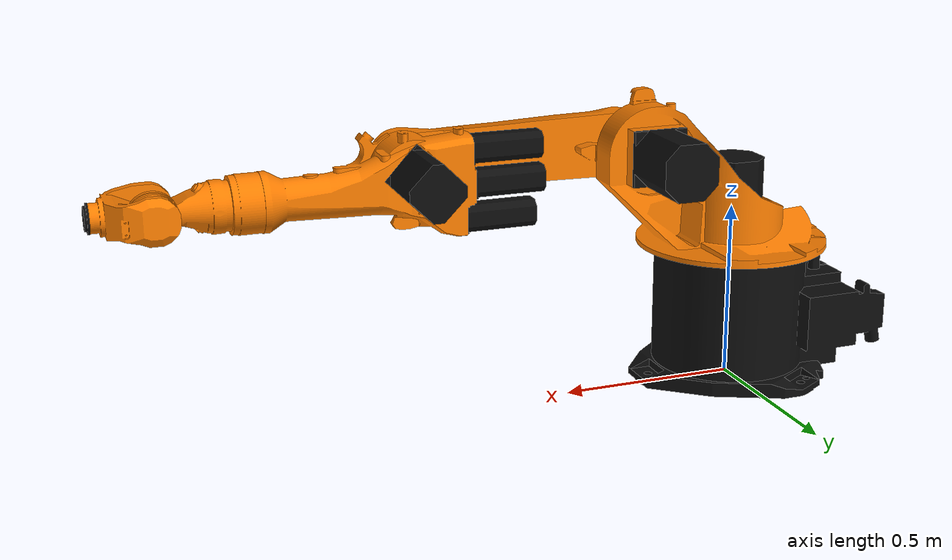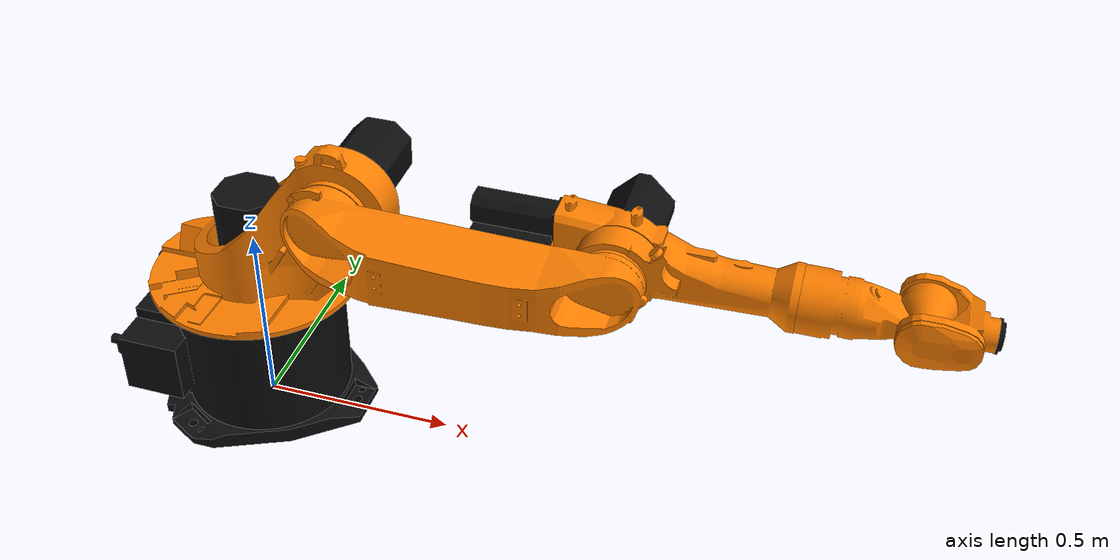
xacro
<?xml version="1.0"?>

<robot name="kuka_kr16" xmlns:xacro="http://www.ros.org/wiki/xacro">

  <xacro:include filename="$(find kuka_kr16_support)/urdf/kr16_macro.xacro" />
  <xacro:include filename="$(find kuka_resources)/urdf/kuka_pedestal_macro.xacro" />

  <xacro:property name="kr16_prefix" value=""/>

  <xacro:kuka_kr16 prefix="${kr16_prefix}"/>

</robot>

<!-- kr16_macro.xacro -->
<robot xmlns:xacro="http://www.ros.org/wiki/xacro">

    <xacro:include filename="$(find kuka_resources)/urdf/common_materials.xacro"/>

    <xacro:property name="DEG2RAD" value="0.017453292519943295"/>
    <xacro:property name="PI" value="3.141592653589793"/>

    <xacro:macro name="kuka_kr16" params="prefix">

        <!-- LINKS -->
            <!-- base link -->
            <link name="${prefix}base_link">
                <visual>
                    <origin xyz="0 0 0" rpy="0 0 0"/>
                    <geometry>
                        <mesh filename="package://kuka_kr16_support/meshes/kr16/visual/base_link.stl" scale="0.001 0.001 0.001" />
                    </geometry>
                    <xacro:material_kuka_black/>
                </visual>
                <collision>
                    <origin xyz="0 0 0" rpy="0 0 0"/>
                    <geometry>
                        <mesh filename="package://kuka_kr16_support/meshes/kr16/collision/base_link.stl" scale="0.001 0.001 0.001" />
                    </geometry>
                </collision>
            </link>
            <!-- link 1 (A1) -->
            <link name="${prefix}link_1">
                <!-- main link body -->
                <visual>
                    <origin xyz="0 0 -0.397" rpy="0 0 0"/>
                    <geometry>
                        <mesh filename="package://kuka_kr16_support/meshes/kr16/visual/link_1.stl" scale="0.001 0.001 0.001" />
                    </geometry>
                    <xacro:material_kuka_orange/>
                </visual>
                <collision>
                    <origin xyz="0 0 -0.397" rpy="0 0 0"/>
                    <geometry>
                        <mesh filename="package://kuka_kr16_support/meshes/kr16/collision/link_1.stl" scale="0.001 0.001 0.001" />
                    </geometry>
                </collision>
            </link>
            <!-- link 2 -->
            <link name="${prefix}link_2">
                <visual>
                    <origin xyz="-0.26 0 -0.675" rpy="0 0 0"/>
                    <geometry>
                        <mesh filename="package://kuka_kr16_support/meshes/kr16/visual/link_2.stl" scale="0.001 0.001 0.001" />
                    </geometry>
                    <xacro:material_kuka_orange/>
                </visual>
                <collision>
                    <origin xyz="-0.26 0 -0.675" rpy="0 0 0"/>
                    <geometry>
                        <mesh filename="package://kuka_kr16_support/meshes/kr16/collision/link_2.stl" scale="0.001 0.001 0.001" />
                    </geometry>
                </collision>
            </link>
            <!-- link 3 -->
            <link name="${prefix}link_3">
                <visual>
                    <origin xyz="-0.26 0 -1.355" rpy="0 0 0"/>
                    <geometry>
                        <mesh filename="package://kuka_kr16_support/meshes/kr16/visual/link_3.stl" scale="0.001 0.001 0.001" />
                    </geometry>
                    <xacro:material_kuka_orange/>
                </visual>
                <collision>
                    <origin xyz="-0.26 0 -1.355" rpy="0 0 0"/>
                    <geometry>
                        <mesh filename="package://kuka_kr16_support/meshes/kr16/collision/link_3.stl" scale="0.001 0.001 0.001" />
                    </geometry>
                </collision>
            </link>
            <!-- link 4 -->
            <link name="${prefix}link_4">
                <visual>
                    <origin xyz="-0.662 0 -1.32" rpy="0 0 0"/>
                    <geometry>
                        <mesh filename="package://kuka_kr16_support/meshes/kr16/visual/link_4.stl" scale="0.001 0.001 0.001" />
                    </geometry>
                    <xacro:material_kuka_orange/>
                </visual>
                <collision>
                    <origin xyz="-0.662 0 -1.32" rpy="0 0 0"/>
                    <geometry>
                        <mesh filename="package://kuka_kr16_support/meshes/kr16/collision/link_4.stl" scale="0.001 0.001 0.001" />
                    </geometry>
                </collision>
            </link>
            <!-- link 5 -->
            <link name="${prefix}link_5">
                <visual>
                    <origin xyz="-0.930 0 -1.320" rpy="0 0 0"/>
                    <geometry>
                        <mesh filename="package://kuka_kr16_support/meshes/kr16/visual/link_5.stl" scale="0.001 0.001 0.001" />
                    </geometry>
                    <xacro:material_kuka_orange/>
                </visual>
                <collision>
                    <origin xyz="-0.930 0 -1.320" rpy="0 0 0"/>
                    <geometry>
                        <mesh filename="package://kuka_kr16_support/meshes/kr16/collision/link_5.stl" scale="0.001 0.001 0.001" />
                    </geometry>
                </collision>
            </link>
            <!-- link 6 -->
            <link name="${prefix}link_6">
                <visual>
                    <origin xyz="-1.088 0 -1.320" rpy="0 0 0"/>
                    <geometry>
                        <mesh filename="package://kuka_kr16_support/meshes/kr16/visual/link_6.stl" scale="0.001 0.001 0.001" />
                    </geometry>
                    <xacro:material_kuka_black/>
                </visual>
                <collision>
                    <origin xyz="-1.088 0 -1.320" rpy="0 0 0"/>
                    <geometry>
                        <mesh filename="package://kuka_kr16_support/meshes/kr16/collision/link_6.stl" scale="0.001 0.001 0.001" />
                    </geometry>
                </collision>
            </link>
            <!-- tool 0 -->
            <link name="${prefix}tool0"/>
        <!-- END LINKS -->

        <!-- JOINTS -->
            <!-- joint 1 (A1) -->
            <joint name="${prefix}joint_1" type="revolute">
                <origin xyz="0 0 0.397" rpy="0 0 0"/>
                <parent link="${prefix}base_link"/>
                <child link="${prefix}link_1"/>
                <axis xyz="0 0 -1"/>
                <limit effort="0" lower="${-DEG2RAD * 185}" upper="${DEG2RAD * 185}" velocity="${DEG2RAD * 156}"/>
            </joint>
            <!-- joint 2 (A2) -->
            <joint name="${prefix}joint_2" type="revolute">
                <origin xyz="0.26 0 ${0.675-0.397}" rpy="0 ${PI/2} 0"/>
                <parent link="${prefix}link_1"/>
                <child link="${prefix}link_2"/>
                <axis xyz="0 1 0"/>
                <limit effort="0" lower="${-DEG2RAD * 155}" upper="${DEG2RAD * 35}" velocity="${DEG2RAD * 156}"/>
            </joint>
            <!-- joint 3 (A3) -->
            <joint name="${prefix}joint_3" type="revolute">
                <origin xyz="0 0 0.68" rpy="0 ${-PI/2} 0"/>
                <parent link="${prefix}link_2"/>
                <child link="${prefix}link_3"/>
                <axis xyz="0 1 0"/>
                <limit effort="0" lower="${-DEG2RAD * 130}" upper="${DEG2RAD * 154}" velocity="${DEG2RAD * 156}"/>
            </joint>
            <!-- joint 4 (A4) -->
            <joint name="${prefix}joint_4" type="revolute">
                <origin xyz="${0.662-0.26} 0 -0.035" rpy="0 0 0"/>
                <parent link="${prefix}link_3"/>
                <child link="${prefix}link_4"/>
                <axis xyz="-1 0 0"/>
                <limit effort="0" lower="${-DEG2RAD * 350}" upper="${DEG2RAD * 350}" velocity="${DEG2RAD * 330}"/>
            </joint>
            <!-- joint 5 (A5) -->
            <joint name="${prefix}joint_5" type="revolute">
                <origin xyz="${0.93-0.662} 0 0" rpy="0 0 0"/>
                <parent link="${prefix}link_4"/>
                <child link="${prefix}link_5"/>
                <axis xyz="0 1 0"/>
                <limit effort="0" lower="${-DEG2RAD * 130}" upper="${DEG2RAD * 130}" velocity="${DEG2RAD * 330}"/>
            </joint>
            <!-- joint 6 (A6) -->
            <joint name="${prefix}joint_6" type="revolute">
                <origin xyz="${1.088-0.93} 0 0" rpy="0 0 0"/>
                <parent link="${prefix}link_5"/>
                <child link="${prefix}link_6"/>
                <axis xyz="-1 0 0"/>
                <limit effort="0" lower="${-DEG2RAD * 350}" upper="${DEG2RAD * 350}" velocity="${DEG2RAD * 615}"/>
            </joint>
            <!-- tool frame - fixed frame -->
            <joint name="${prefix}joint_6-tool0" type="fixed">
                <parent link="${prefix}link_6"/>
                <child link="${prefix}tool0"/>
                <origin xyz="0 0 0" rpy="0 ${PI/2} 0"/>
            </joint>
        <!-- END JOINTS -->

        <!-- MOTORS -->
            <!-- A1 motor link -->
            <link name="${prefix}link_1_motor1">
                <visual>
                    <origin xyz="0 0 -0.397" rpy="0 0 0"/>
                    <geometry>
                        <mesh filename="package://kuka_kr16_support/meshes/kr16/visual/link_1_motor1.stl" scale="0.001 0.001 0.001" />
                    </geometry>
                    <xacro:material_kuka_black/>
                </visual>
                <collision>
                    <origin xyz="0 0 -0.397" rpy="0 0 0"/>
                    <geometry>
                        <mesh filename="package://kuka_kr16_support/meshes/kr16/collision/link_1_motor1.stl" scale="0.001 0.001 0.001" />
                    </geometry>
                </collision>
            </link>
            <!-- A2 motor link -->
            <link name="${prefix}link_1_motor2">
                <visual>
                    <origin xyz="0 0 -0.397" rpy="0 0 0"/>
                    <geometry>
                        <mesh filename="package://kuka_kr16_support/meshes/kr16/visual/link_1_motor2.stl" scale="0.001 0.001 0.001" />
                    </geometry>
                    <xacro:material_kuka_black/>
                </visual>
                <collision>
                    <origin xyz="0 0 -0.397" rpy="0 0 0"/>
                    <geometry>
                        <mesh filename="package://kuka_kr16_support/meshes/kr16/collision/link_1_motor2.stl" scale="0.001 0.001 0.001" />
                    </geometry>
                </collision>
            </link>
            <!-- A3 motor link -->
            <link name="${prefix}link_3_motor4">
                <visual>
                    <origin xyz="-0.26 0 -1.355" rpy="0 0 0"/>
                    <geometry>
                        <mesh filename="package://kuka_kr16_support/meshes/kr16/visual/link_3_motor4.stl" scale="0.001 0.001 0.001" />
                    </geometry>
                    <xacro:material_kuka_black/>
                </visual>
                <collision>
                    <origin xyz="-0.26 0 -1.355" rpy="0 0 0"/>
                    <geometry>
                        <mesh filename="package://kuka_kr16_support/meshes/kr16/collision/link_3_motor4.stl" scale="0.001 0.001 0.001" />
                    </geometry>
                </collision>
            </link>
            <!-- A4 motor link  -->
            <link name="${prefix}link_3_motor1">
                <visual>
                    <origin xyz="-0.26 0 -1.355" rpy="0 0 0"/>
                    <geometry>
                        <mesh filename="package://kuka_kr16_support/meshes/kr16/visual/link_3_motor1.stl" scale="0.001 0.001 0.001" />
                    </geometry>
                    <xacro:material_kuka_black/>
                </visual>
                <collision>
                    <origin xyz="-0.26 0 -1.355" rpy="0 0 0"/>
                    <geometry>
                        <mesh filename="package://kuka_kr16_support/meshes/kr16/collision/link_3_motor1.stl" scale="0.001 0.001 0.001" />
                    </geometry>
                </collision>
            </link>
            <!-- A5 motor link-->
            <link name="${prefix}link_3_motor2">
                <visual>
                    <origin xyz="-0.26 0 -1.355" rpy="0 0 0"/>
                    <geometry>
                        <mesh filename="package://kuka_kr16_support/meshes/kr16/visual/link_3_motor2.stl" scale="0.001 0.001 0.001" />
                    </geometry>
                    <xacro:material_kuka_black/>
                </visual>
                <collision>
                    <origin xyz="-0.26 0 -1.355" rpy="0 0 0"/>
                    <geometry>
                        <mesh filename="package://kuka_kr16_support/meshes/kr16/collision/link_3_motor2.stl" scale="0.001 0.001 0.001" />
                    </geometry>
                </collision>
            </link>
            <!-- A6 motor link -->
            <link name="${prefix}link_3_motor3">
                <visual>
                    <origin xyz="-0.26 0 -1.355" rpy="0 0 0"/>
                    <geometry>
                        <mesh filename="package://kuka_kr16_support/meshes/kr16/visual/link_3_motor3.stl" scale="0.001 0.001 0.001" />
                    </geometry>
                    <xacro:material_kuka_black/>
                </visual>
                <collision>
                    <origin xyz="-0.26 0 -1.355" rpy="0 0 0"/>
                    <geometry>
                        <mesh filename="package://kuka_kr16_support/meshes/kr16/collision/link_3_motor3.stl" scale="0.001 0.001 0.001" />
                    </geometry>
                </collision>
            </link>
            <!-- A1 motor joint -->
            <joint name="${prefix}joint_1_motor1" type="fixed">
                <origin xyz="0 0 0" rpy="0 0 0"/>
                <parent link="${prefix}link_1"/>
                <child link="${prefix}link_1_motor1"/>
            </joint>
            <!-- A2 motor joint -->
            <joint name="${prefix}joint_1_motor2" type="fixed">
                <origin xyz="0 0 0" rpy="0 0 0"/>
                <parent link="${prefix}link_1"/>
                <child link="${prefix}link_1_motor2"/>
            </joint>
            <!-- A3 motor joint -->
            <joint name="${prefix}joint_3_motor1" type="fixed">
                <origin xyz="0 0 0" rpy="0 0 0"/>
                <parent link="${prefix}link_3"/>
                <child link="${prefix}link_3_motor1"/>
            </joint>
            <!-- A4 motor joint -->
            <joint name="${prefix}joint_3_motor2" type="fixed">
                <origin xyz="0 0 0" rpy="0 0 0"/>
                <parent link="${prefix}link_3"/>
                <child link="${prefix}link_3_motor2"/>
            </joint>
            <!-- A5 motor joint -->
            <joint name="${prefix}joint_3_motor3" type="fixed">
                <origin xyz="0 0 0" rpy="0 0 0"/>
                <parent link="${prefix}link_3"/>
                <child link="${prefix}link_3_motor3"/>
            </joint>
            <!-- A6 motor joint -->
            <joint name="${prefix}joint_3_motor4" type="fixed">
                <origin xyz="0 0 0" rpy="0 0 0"/>
                <parent link="${prefix}link_3"/>
                <child link="${prefix}link_3_motor4"/>
            </joint>
        <!-- END MOTORS -->

    </xacro:macro>
</robot>

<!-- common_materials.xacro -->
<robot xmlns:xacro="http://ros.org/wiki/xacro">
  <xacro:include filename="$(find kuka_resources)/urdf/common_colours.xacro"/>

    <material name="kuka_orange">
      <color rgba="${color_kuka_orange}"/>
    </material>
    <material name="kuka_black">
      <color rgba="${color_kuka_black}"/>
    </material>

    <xacro:macro name="material_kuka_orange">
        <material name="">
            <color rgba="${color_kuka_orange}"/>
        </material>
    </xacro:macro>

    <xacro:macro name="material_kuka_black">
        <material name="">
            <color rgba="${color_kuka_black}"/>
        </material>
    </xacro:macro>

    <xacro:macro name="material_kuka" params="color">
      <xacro:if color="black">
        <xacro:material_kuka_black/>
      </xacro:if>
      <xacro:if color="orange">
        <xacro:material_kuka_orange/>
      </xacro:if>
    </xacro:macro>

</robot>

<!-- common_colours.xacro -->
<!-- This file contains the URDF parameters for the common kuka colors -->
<robot xmlns:xacro="http://ros.org/wiki/xacro">
    <xacro:property name="color_kuka_orange" value="1.0 0.5 0.0 1.0"/>
    <xacro:property name="color_kuka_black" value="0.05 0.05 0.05 1.0"/>
</robot>
